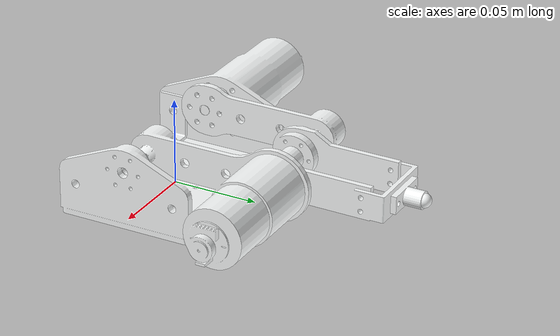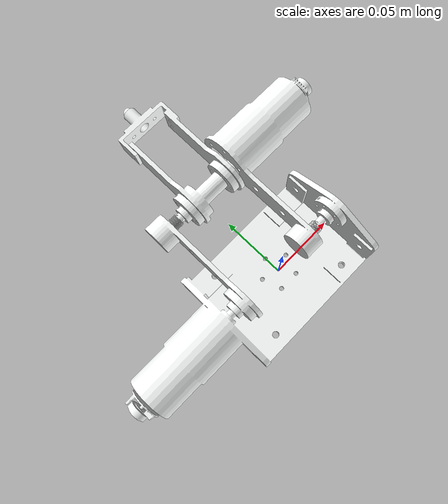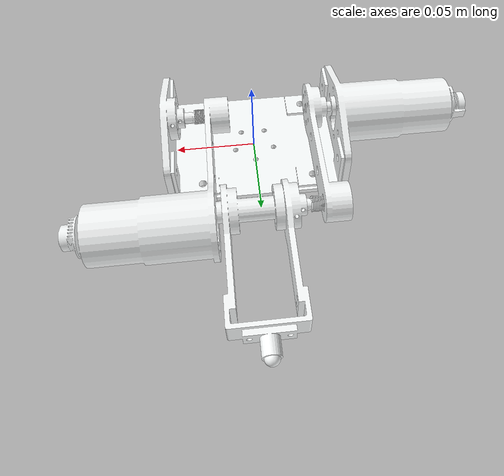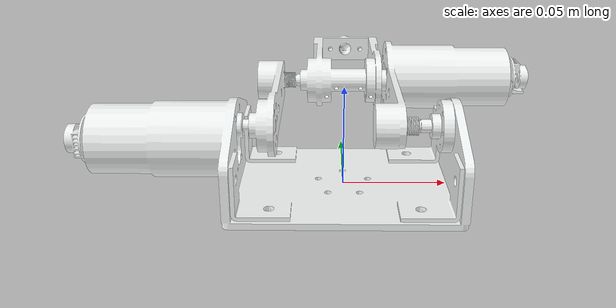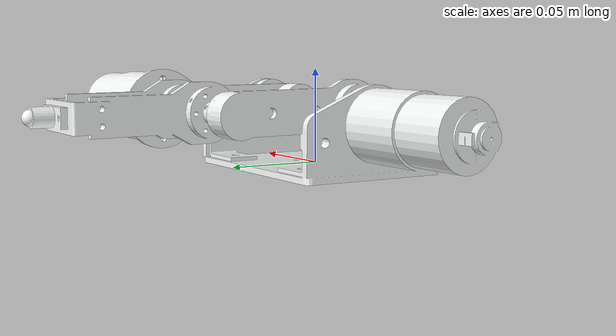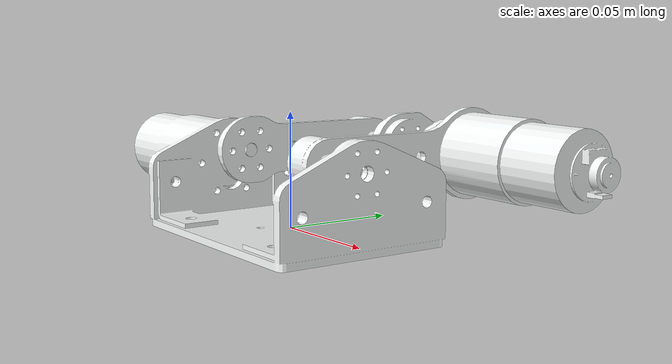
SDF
<sdf version='1.11'>
  <model name='my_robot'>
    <link name='base_link'>
      <inertial>
        <pose>-0.045567999999999997 -6.0363000000000001e-06 0.016416 0 0 0</pose>
        <mass>0.12503</mass>
        <inertia>
          <ixx>3.9011000000000003e-05</ixx>
          <ixy>-4.4034e-10</ixy>
          <ixz>-9.4868e-09</ixz>
          <iyy>5.9546000000000002e-05</iyy>
          <iyz>1.2812000000000001e-09</iyz>
          <izz>8.1796000000000001e-05</izz>
        </inertia>
      </inertial>
      <collision name='base_link_collision'>
        <pose>0 0 0 0 0 0</pose>
        <geometry>
          <mesh>
            <scale>1 1 1</scale>
            <uri>file:///home/chiva/ros2_ws/src/my_robot_planar/meshes/base_link.STL</uri>
          </mesh>
        </geometry>
      </collision>
      <visual name='base_link_visual'>
        <pose>0 0 0 0 0 0</pose>
        <geometry>
          <mesh>
            <scale>1 1 1</scale>
            <uri>file:///home/chiva/ros2_ws/src/my_robot_planar/meshes/base_link.STL</uri>
          </mesh>
        </geometry>
        <material>
          <diffuse>0.990199983 1 1 1</diffuse>
          <ambient>0.990199983 1 1 1</ambient>
        </material>
      </visual>
    </link>
    <joint name='joint1' type='revolute'>
      <pose relative_to='base_link'>-0.043203999999999999 -0.00013674 0.030450999999999999 -1.5708000000000004 -1.5271000000000059 1.5708000000000002</pose>
      <parent>base_link</parent>
      <child>Motor1_Link</child>
      <axis>
        <xyz>0 0 1</xyz>
        <limit>
          <effort>100</effort>
          <velocity>100</velocity>
          <lower>-inf</lower>
          <upper>inf</upper>
        </limit>
        <dynamics>
          <damping>0.10000000000000001</damping>
          <friction>0.10000000000000001</friction>
          <spring_reference>0</spring_reference>
          <spring_stiffness>0</spring_stiffness>
        </dynamics>
      </axis>
    </joint>
    <link name='Motor1_Link'>
      <pose relative_to='joint1'>0 0 0 0 0 0</pose>
      <inertial>
        <pose>0.0021909999999999998 0.064827999999999997 -0.085027000000000005 0 0 0</pose>
        <mass>0.094023999999999996</mass>
        <inertia>
          <ixx>3.9845000000000002e-05</ixx>
          <ixy>-3.4855999999999999e-07</ixy>
          <ixz>6.7837999999999999e-10</ixz>
          <iyy>2.9913e-05</iyy>
          <iyz>9.5762000000000001e-09</iyz>
          <izz>2.2849000000000001e-05</izz>
        </inertia>
      </inertial>
      <collision name='Motor1_Link_collision'>
        <pose>0 0 0 0 0 0</pose>
        <geometry>
          <mesh>
            <scale>1 1 1</scale>
            <uri>file:///home/chiva/ros2_ws/src/my_robot_planar/meshes/Motor1_Link.STL</uri>
          </mesh>
        </geometry>
      </collision>
      <visual name='Motor1_Link_visual'>
        <pose>0 0 0 0 0 0</pose>
        <geometry>
          <mesh>
            <scale>1 1 1</scale>
            <uri>file:///home/chiva/ros2_ws/src/my_robot_planar/meshes/Motor1_Link.STL</uri>
          </mesh>
        </geometry>
        <material>
          <diffuse>0.990199983 1 1 1</diffuse>
          <ambient>0.990199983 1 1 1</ambient>
        </material>
      </visual>
    </link>
    <joint name='joint2' type='revolute'>
      <pose relative_to='Motor1_Link'>0.0024028999999999999 0.070152999999999993 -0.047398000000000003 0 0 -0.55803000000000003</pose>
      <parent>Motor1_Link</parent>
      <child>Motor2_Link</child>
      <axis>
        <xyz>0 0 1</xyz>
        <limit>
          <effort>100</effort>
          <velocity>100</velocity>
          <lower>-inf</lower>
          <upper>inf</upper>
        </limit>
        <dynamics>
          <damping>0.10000000000000001</damping>
          <friction>0.10000000000000001</friction>
          <spring_reference>0</spring_reference>
          <spring_stiffness>0</spring_stiffness>
        </dynamics>
      </axis>
    </joint>
    <link name='Motor2_Link'>
      <pose relative_to='joint2'>0 0 0 0 0 0</pose>
      <inertial>
        <pose>-0.0099340690602777604 0.017160906052406569 0.0024501655166589849 0 0 0</pose>
        <mass>0.022736079999999999</mass>
        <inertia>
          <ixx>6.012061101716937e-06</ixx>
          <ixy>2.134222482919513e-06</ixy>
          <ixz>-2.0749186352767712e-08</ixz>
          <iyy>3.556904423631972e-06</iyy>
          <iyz>3.5936935130456297e-08</iyz>
          <izz>6.6420926853136944e-06</izz>
        </inertia>
      </inertial>
      <collision name='Motor2_Link_collision'>
        <pose>0 0 0 0 0 0</pose>
        <geometry>
          <mesh>
            <scale>1 1 1</scale>
            <uri>file:///home/chiva/ros2_ws/src/my_robot_planar/meshes/Motor2_Link.STL</uri>
          </mesh>
        </geometry>
      </collision>
      <collision name='Motor2_Link_fixed_joint_lump__End_effctor_Link_collision_1'>
        <pose>-0.041151 0.071210999999999997 0 1.651 0.11053000000000004 -1.8716999999999999</pose>
        <geometry>
          <mesh>
            <scale>1 1 1</scale>
            <uri>file:///home/chiva/ros2_ws/src/my_robot_planar/meshes/End_effctor_Link.STL</uri>
          </mesh>
        </geometry>
      </collision>
      <visual name='Motor2_Link_visual'>
        <pose>0 0 0 0 0 0</pose>
        <geometry>
          <mesh>
            <scale>1 1 1</scale>
            <uri>file:///home/chiva/ros2_ws/src/my_robot_planar/meshes/Motor2_Link.STL</uri>
          </mesh>
        </geometry>
        <material>
          <diffuse>0.990199983 1 1 1</diffuse>
          <ambient>0.990199983 1 1 1</ambient>
        </material>
      </visual>
      <visual name='Motor2_Link_fixed_joint_lump__End_effctor_Link_visual_1'>
        <pose>-0.041151 0.071210999999999997 0 1.651 0.11053000000000004 -1.8716999999999999</pose>
        <geometry>
          <mesh>
            <scale>1 1 1</scale>
            <uri>file:///home/chiva/ros2_ws/src/my_robot_planar/meshes/End_effctor_Link.STL</uri>
          </mesh>
        </geometry>
        <material>
          <diffuse>0.990199983 1 1 1</diffuse>
          <ambient>0.990199983 1 1 1</ambient>
        </material>
      </visual>
    </link>
    <frame name='joint_End' attached_to='Motor2_Link'>
      <pose>-0.041151 0.071210999999999997 0 1.651 0.11053000000000021 -1.8716999999999999</pose>
    </frame>
    <frame name='End_effctor_Link' attached_to='joint_End'>
      <pose>0 0 0 0 0 0</pose>
    </frame>

    <joint name="fixed_to_ground" type="fixed">
      <parent>world</parent>
      <child>base_link</child>
    </joint>

    <plugin
      filename="gz-sim-joint-position-controller-system"
      name="gz::sim::systems::JointPositionController">
      <joint_name>joint1</joint_name>
      <topic>/topic_1</topic>
      <p_gain>1.5</p_gain>
      <i_gain>0.1</i_gain>
      <d_gain>0.001</d_gain>
      <i_max>1</i_max>
      <i_min>-1</i_min>
      <cmd_max>1000</cmd_max>
      <cmd_min>-1000</cmd_min>
    </plugin>

    <plugin
      filename="gz-sim-joint-position-controller-system"
      name="gz::sim::systems::JointPositionController">
      <joint_name>joint2</joint_name>
      <topic>/topic_2</topic>
      <p_gain>1.4</p_gain>
      <i_gain>0.1</i_gain>
      <d_gain>0.1</d_gain>
      <i_max>1</i_max>
      <i_min>-1</i_min>
      <cmd_max>1000</cmd_max>
      <cmd_min>-1000</cmd_min>
    </plugin>

    <plugin
        filename="gz-sim-joint-state-publisher-system"
        name="gz::sim::systems::JointStatePublisher">
        <topic>/joint_states</topic>
        <joint_name>joint1</joint_name>
        <joint_name>joint2</joint_name>
    </plugin>
  </model>
</sdf>
